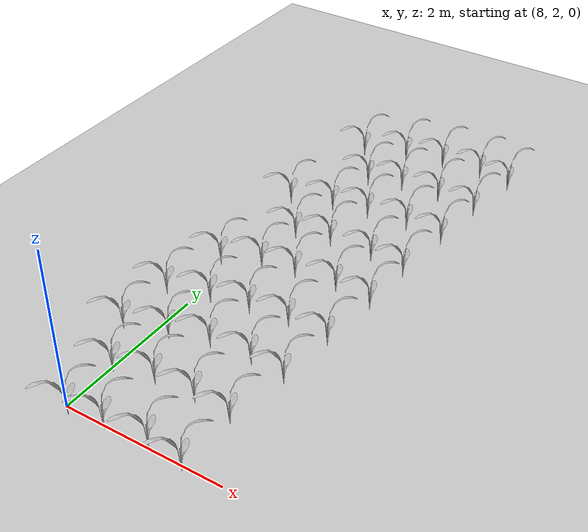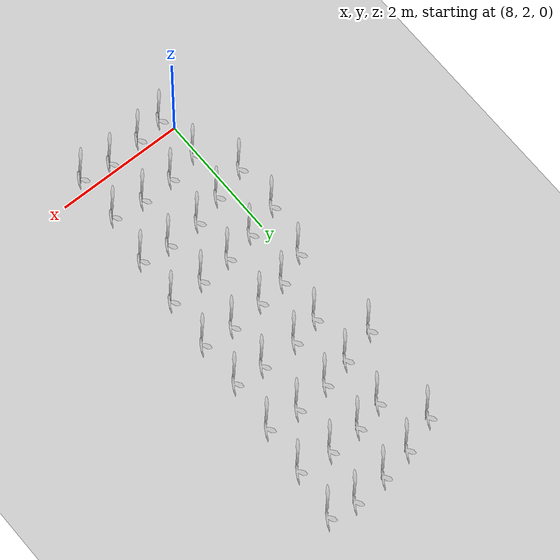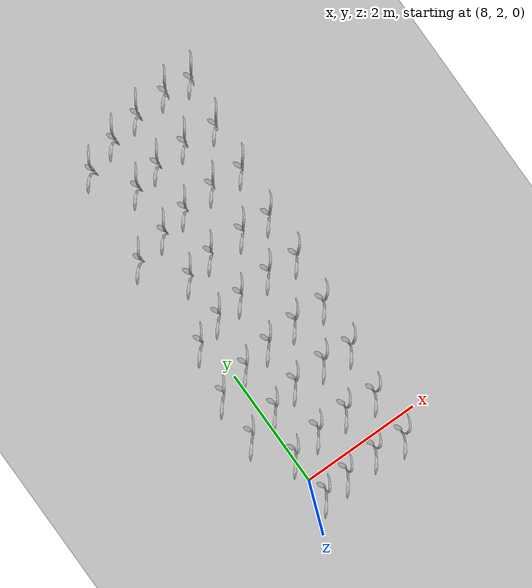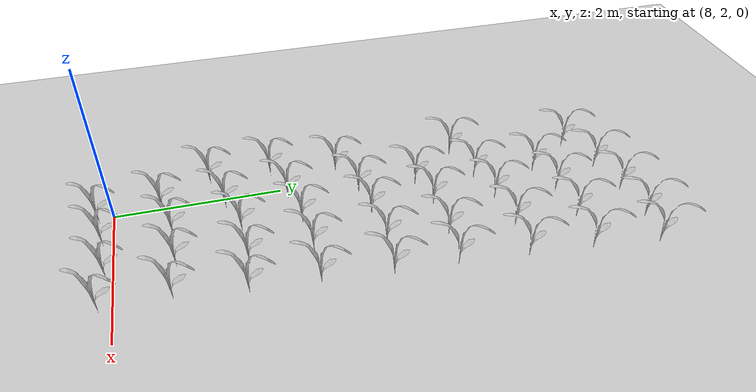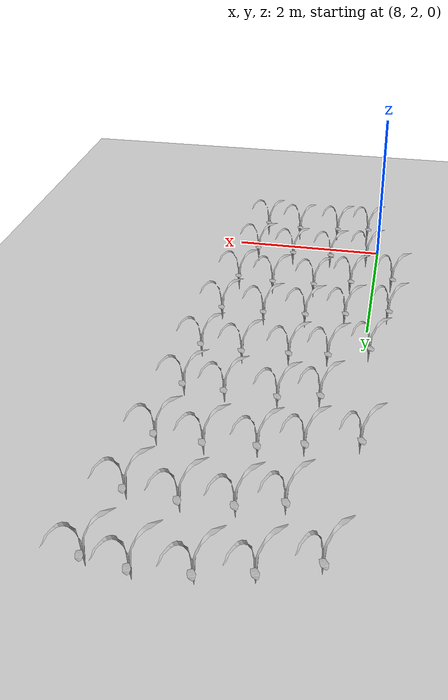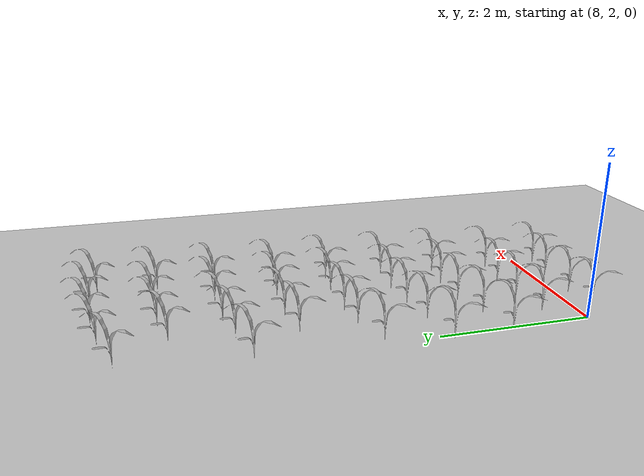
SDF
<sdf version="1.7">
 <world name="default">
  <model name="ground_plane">
   <static>1</static>
   <link name="link">
    <collision name="collision">
     <geometry><plane><normal>0 0 1</normal><size>100 100</size></plane></geometry>
     <surface>
      <contact><collide_bitmask>65535</collide_bitmask></contact>
      <friction><ode><mu>100</mu><mu2>50</mu2></ode></friction>
     </surface>
    </collision>
    <visual name="visual">
     <cast_shadows>0</cast_shadows>
     <geometry><plane><normal>0 0 1</normal><size>100 100</size></plane></geometry>
     <material>
      <script><uri>file://media/materials/scripts/gazebo.material</uri><name>Gazebo/Grey</name></script>
     </material>
    </visual>
   </link>
  </model>
  <model name="field_row_full_double">
   <model name="maize_02_clone_144">
    <pose>3.11491 -0.382862 0.000249 0 -0 0</pose>
    <link name="maize_02_link">
     <inertial>
      <pose>0 0 0.01 0 -0 0</pose>
      <mass>0.3</mass>
      <inertia>
       <ixx>0.00334167</ixx>
       <ixy>0</ixy>
       <ixz>0</ixz>
       <iyy>0.00334167</iyy>
       <iyz>0</iyz>
       <izz>1.66667e-05</izz>
      </inertia>
      <pose>0 0 0.1 0 -0 0</pose>
     </inertial>
     <collision name="collision">
      <pose>0 0 0.2 0 -0 0</pose>
      <geometry><box><size>0.02 0.02 0.4</size></box></geometry>
      <surface><friction><ode><mu>10</mu><mu2>10</mu2></ode></friction></surface>
     </collision>
     <visual name="visual">
      <geometry>
       <mesh><uri>model://maize_02/meshes/maize_02.dae</uri><scale>0.683166 0.683166 0.683166</scale></mesh>
      </geometry>
     </visual>
    </link>
   </model>
   <model name="maize_02_clone_145">
    <pose>3.5904 -0.244536 0.000249 0 -0 0</pose>
    <link name="maize_02_link">
     <inertial>
      <pose>0 0 0.01 0 -0 0</pose>
      <mass>0.3</mass>
      <inertia>
       <ixx>0.00334167</ixx>
       <ixy>0</ixy>
       <ixz>0</ixz>
       <iyy>0.00334167</iyy>
       <iyz>0</iyz>
       <izz>1.66667e-05</izz>
      </inertia>
      <pose>0 0 0.1 0 -0 0</pose>
     </inertial>
     <collision name="collision">
      <pose>0 0 0.2 0 -0 0</pose>
      <geometry><box><size>0.02 0.02 0.4</size></box></geometry>
      <surface><friction><ode><mu>10</mu><mu2>10</mu2></ode></friction></surface>
     </collision>
     <visual name="visual">
      <geometry>
       <mesh><uri>model://maize_02/meshes/maize_02.dae</uri><scale>0.683166 0.683166 0.683166</scale></mesh>
      </geometry>
     </visual>
    </link>
   </model>
   <model name="maize_02_clone_146">
    <pose>4.10048 -0.192664 0.000249 0 -0 0</pose>
    <link name="maize_02_link">
     <inertial>
      <pose>0 0 0.01 0 -0 0</pose>
      <mass>0.3</mass>
      <inertia>
       <ixx>0.00334167</ixx>
       <ixy>0</ixy>
       <ixz>0</ixz>
       <iyy>0.00334167</iyy>
       <iyz>0</iyz>
       <izz>1.66667e-05</izz>
      </inertia>
      <pose>0 0 0.1 0 -0 0</pose>
     </inertial>
     <collision name="collision">
      <pose>0 0 0.2 0 -0 0</pose>
      <geometry><box><size>0.02 0.02 0.4</size></box></geometry>
      <surface><friction><ode><mu>10</mu><mu2>10</mu2></ode></friction></surface>
     </collision>
     <visual name="visual">
      <geometry>
       <mesh><uri>model://maize_02/meshes/maize_02.dae</uri><scale>0.683166 0.683166 0.683166</scale></mesh>
      </geometry>
     </visual>
    </link>
   </model>
   <model name="maize_02_clone_147">
    <pose>4.59326 -0.209955 0.000249 0 -0 0</pose>
    <link name="maize_02_link">
     <inertial>
      <pose>0 0 0.01 0 -0 0</pose>
      <mass>0.3</mass>
      <inertia>
       <ixx>0.00334167</ixx>
       <ixy>0</ixy>
       <ixz>0</ixz>
       <iyy>0.00334167</iyy>
       <iyz>0</iyz>
       <izz>1.66667e-05</izz>
      </inertia>
      <pose>0 0 0.1 0 -0 0</pose>
     </inertial>
     <collision name="collision">
      <pose>0 0 0.2 0 -0 0</pose>
      <geometry><box><size>0.02 0.02 0.4</size></box></geometry>
      <surface><friction><ode><mu>10</mu><mu2>10</mu2></ode></friction></surface>
     </collision>
     <visual name="visual">
      <geometry>
       <mesh><uri>model://maize_02/meshes/maize_02.dae</uri><scale>0.683166 0.683166 0.683166</scale></mesh>
      </geometry>
     </visual>
    </link>
   </model>
   <model name="maize_02_clone_148">
    <pose>4.64514 0.576773 0.000249 0 -0 0</pose>
    <link name="maize_02_link">
     <inertial>
      <pose>0 0 0.01 0 -0 0</pose>
      <mass>0.3</mass>
      <inertia>
       <ixx>0.00334167</ixx>
       <ixy>0</ixy>
       <ixz>0</ixz>
       <iyy>0.00334167</iyy>
       <iyz>0</iyz>
       <izz>1.66667e-05</izz>
      </inertia>
      <pose>0 0 0.1 0 -0 0</pose>
     </inertial>
     <collision name="collision">
      <pose>0 0 0.2 0 -0 0</pose>
      <geometry><box><size>0.02 0.02 0.4</size></box></geometry>
      <surface><friction><ode><mu>10</mu><mu2>10</mu2></ode></friction></surface>
     </collision>
     <visual name="visual">
      <geometry>
       <mesh><uri>model://maize_02/meshes/maize_02.dae</uri><scale>0.683166 0.683166 0.683166</scale></mesh>
      </geometry>
     </visual>
    </link>
   </model>
   <model name="maize_02_clone_149">
    <pose>4.18693 0.594063 0.000249 0 -0 0</pose>
    <link name="maize_02_link">
     <inertial>
      <pose>0 0 0.01 0 -0 0</pose>
      <mass>0.3</mass>
      <inertia>
       <ixx>0.00334167</ixx>
       <ixy>0</ixy>
       <ixz>0</ixz>
       <iyy>0.00334167</iyy>
       <iyz>0</iyz>
       <izz>1.66667e-05</izz>
      </inertia>
      <pose>0 0 0.1 0 -0 0</pose>
     </inertial>
     <collision name="collision">
      <pose>0 0 0.2 0 -0 0</pose>
      <geometry><box><size>0.02 0.02 0.4</size></box></geometry>
      <surface><friction><ode><mu>10</mu><mu2>10</mu2></ode></friction></surface>
     </collision>
     <visual name="visual">
      <geometry>
       <mesh><uri>model://maize_02/meshes/maize_02.dae</uri><scale>0.683166 0.683166 0.683166</scale></mesh>
      </geometry>
     </visual>
    </link>
   </model>
   <model name="maize_02_clone_150">
    <pose>3.65957 0.533546 0.000249 0 -0 0</pose>
    <link name="maize_02_link">
     <inertial>
      <pose>0 0 0.01 0 -0 0</pose>
      <mass>0.3</mass>
      <inertia>
       <ixx>0.00334167</ixx>
       <ixy>0</ixy>
       <ixz>0</ixz>
       <iyy>0.00334167</iyy>
       <iyz>0</iyz>
       <izz>1.66667e-05</izz>
      </inertia>
      <pose>0 0 0.1 0 -0 0</pose>
     </inertial>
     <collision name="collision">
      <pose>0 0 0.2 0 -0 0</pose>
      <geometry><box><size>0.02 0.02 0.4</size></box></geometry>
      <surface><friction><ode><mu>10</mu><mu2>10</mu2></ode></friction></surface>
     </collision>
     <visual name="visual">
      <geometry>
       <mesh><uri>model://maize_02/meshes/maize_02.dae</uri><scale>0.683166 0.683166 0.683166</scale></mesh>
      </geometry>
     </visual>
    </link>
   </model>
   <model name="maize_02_clone_151">
    <pose>3.21001 0.360639 0.000249 0 -0 0</pose>
    <link name="maize_02_link">
     <inertial>
      <pose>0 0 0.01 0 -0 0</pose>
      <mass>0.3</mass>
      <inertia>
       <ixx>0.00334167</ixx>
       <ixy>0</ixy>
       <ixz>0</ixz>
       <iyy>0.00334167</iyy>
       <iyz>0</iyz>
       <izz>1.66667e-05</izz>
      </inertia>
      <pose>0 0 0.1 0 -0 0</pose>
     </inertial>
     <collision name="collision">
      <pose>0 0 0.2 0 -0 0</pose>
      <geometry><box><size>0.02 0.02 0.4</size></box></geometry>
      <surface><friction><ode><mu>10</mu><mu2>10</mu2></ode></friction></surface>
     </collision>
     <visual name="visual">
      <geometry>
       <mesh><uri>model://maize_02/meshes/maize_02.dae</uri><scale>0.683166 0.683166 0.683166</scale></mesh>
      </geometry>
     </visual>
    </link>
   </model>
   <model name="maize_02_clone_152">
    <pose>2.69993 0.179087 0.000249 0 -0 0</pose>
    <link name="maize_02_link">
     <inertial>
      <pose>0 0 0.01 0 -0 0</pose>
      <mass>0.3</mass>
      <inertia>
       <ixx>0.00334167</ixx>
       <ixy>0</ixy>
       <ixz>0</ixz>
       <iyy>0.00334167</iyy>
       <iyz>0</iyz>
       <izz>1.66667e-05</izz>
      </inertia>
      <pose>0 0 0.1 0 -0 0</pose>
     </inertial>
     <collision name="collision">
      <pose>0 0 0.2 0 -0 0</pose>
      <geometry><box><size>0.02 0.02 0.4</size></box></geometry>
      <surface><friction><ode><mu>10</mu><mu2>10</mu2></ode></friction></surface>
     </collision>
     <visual name="visual">
      <geometry>
       <mesh><uri>model://maize_02/meshes/maize_02.dae</uri><scale>0.683166 0.683166 0.683166</scale></mesh>
      </geometry>
     </visual>
    </link>
   </model>
   <model name="maize_02_clone_157">
    <pose>2.64806 0.922587 0.000249 0 -0 0</pose>
    <link name="maize_02_link">
     <inertial>
      <pose>0 0 0.01 0 -0 0</pose>
      <mass>0.3</mass>
      <inertia>
       <ixx>0.00334167</ixx>
       <ixy>0</ixy>
       <ixz>0</ixz>
       <iyy>0.00334167</iyy>
       <iyz>0</iyz>
       <izz>1.66667e-05</izz>
      </inertia>
      <pose>0 0 0.1 0 -0 0</pose>
     </inertial>
     <collision name="collision">
      <pose>0 0 0.2 0 -0 0</pose>
      <geometry><box><size>0.02 0.02 0.4</size></box></geometry>
      <surface><friction><ode><mu>10</mu><mu2>10</mu2></ode></friction></surface>
     </collision>
     <visual name="visual">
      <geometry>
       <mesh><uri>model://maize_02/meshes/maize_02.dae</uri><scale>0.683166 0.683166 0.683166</scale></mesh>
      </geometry>
     </visual>
    </link>
   </model>
   <model name="maize_02_clone_158">
    <pose>3.14949 1.10414 0.000249 0 -0 0</pose>
    <link name="maize_02_link">
     <inertial>
      <pose>0 0 0.01 0 -0 0</pose>
      <mass>0.3</mass>
      <inertia>
       <ixx>0.00334167</ixx>
       <ixy>0</ixy>
       <ixz>0</ixz>
       <iyy>0.00334167</iyy>
       <iyz>0</iyz>
       <izz>1.66667e-05</izz>
      </inertia>
      <pose>0 0 0.1 0 -0 0</pose>
     </inertial>
     <collision name="collision">
      <pose>0 0 0.2 0 -0 0</pose>
      <geometry><box><size>0.02 0.02 0.4</size></box></geometry>
      <surface><friction><ode><mu>10</mu><mu2>10</mu2></ode></friction></surface>
     </collision>
     <visual name="visual">
      <geometry>
       <mesh><uri>model://maize_02/meshes/maize_02.dae</uri><scale>0.683166 0.683166 0.683166</scale></mesh>
      </geometry>
     </visual>
    </link>
   </model>
   <model name="maize_02_clone_159">
    <pose>3.61634 1.23382 0.000249 0 -0 0</pose>
    <link name="maize_02_link">
     <inertial>
      <pose>0 0 0.01 0 -0 0</pose>
      <mass>0.3</mass>
      <inertia>
       <ixx>0.00334167</ixx>
       <ixy>0</ixy>
       <ixz>0</ixz>
       <iyy>0.00334167</iyy>
       <iyz>0</iyz>
       <izz>1.66667e-05</izz>
      </inertia>
      <pose>0 0 0.1 0 -0 0</pose>
     </inertial>
     <collision name="collision">
      <pose>0 0 0.2 0 -0 0</pose>
      <geometry><box><size>0.02 0.02 0.4</size></box></geometry>
      <surface><friction><ode><mu>10</mu><mu2>10</mu2></ode></friction></surface>
     </collision>
     <visual name="visual">
      <geometry>
       <mesh><uri>model://maize_02/meshes/maize_02.dae</uri><scale>0.683166 0.683166 0.683166</scale></mesh>
      </geometry>
     </visual>
    </link>
   </model>
   <model name="maize_02_clone_160">
    <pose>4.11777 1.31163 0.000249 0 -0 0</pose>
    <link name="maize_02_link">
     <inertial>
      <pose>0 0 0.01 0 -0 0</pose>
      <mass>0.3</mass>
      <inertia>
       <ixx>0.00334167</ixx>
       <ixy>0</ixy>
       <ixz>0</ixz>
       <iyy>0.00334167</iyy>
       <iyz>0</iyz>
       <izz>1.66667e-05</izz>
      </inertia>
      <pose>0 0 0.1 0 -0 0</pose>
     </inertial>
     <collision name="collision">
      <pose>0 0 0.2 0 -0 0</pose>
      <geometry><box><size>0.02 0.02 0.4</size></box></geometry>
      <surface><friction><ode><mu>10</mu><mu2>10</mu2></ode></friction></surface>
     </collision>
     <visual name="visual">
      <geometry>
       <mesh><uri>model://maize_02/meshes/maize_02.dae</uri><scale>0.683166 0.683166 0.683166</scale></mesh>
      </geometry>
     </visual>
    </link>
   </model>
   <model name="maize_02_clone_161">
    <pose>4.63649 1.33756 0.000249 0 -0 0</pose>
    <link name="maize_02_link">
     <inertial>
      <pose>0 0 0.01 0 -0 0</pose>
      <mass>0.3</mass>
      <inertia>
       <ixx>0.00334167</ixx>
       <ixy>0</ixy>
       <ixz>0</ixz>
       <iyy>0.00334167</iyy>
       <iyz>0</iyz>
       <izz>1.66667e-05</izz>
      </inertia>
      <pose>0 0 0.1 0 -0 0</pose>
     </inertial>
     <collision name="collision">
      <pose>0 0 0.2 0 -0 0</pose>
      <geometry><box><size>0.02 0.02 0.4</size></box></geometry>
      <surface><friction><ode><mu>10</mu><mu2>10</mu2></ode></friction></surface>
     </collision>
     <visual name="visual">
      <geometry>
       <mesh><uri>model://maize_02/meshes/maize_02.dae</uri><scale>0.683166 0.683166 0.683166</scale></mesh>
      </geometry>
     </visual>
    </link>
   </model>
   <model name="maize_02_clone_162">
    <pose>4.63649 2.12429 0.000249 0 -0 0</pose>
    <link name="maize_02_link">
     <inertial>
      <pose>0 0 0.01 0 -0 0</pose>
      <mass>0.3</mass>
      <inertia>
       <ixx>0.00334167</ixx>
       <ixy>0</ixy>
       <ixz>0</ixz>
       <iyy>0.00334167</iyy>
       <iyz>0</iyz>
       <izz>1.66667e-05</izz>
      </inertia>
      <pose>0 0 0.1 0 -0 0</pose>
     </inertial>
     <collision name="collision">
      <pose>0 0 0.2 0 -0 0</pose>
      <geometry><box><size>0.02 0.02 0.4</size></box></geometry>
      <surface><friction><ode><mu>10</mu><mu2>10</mu2></ode></friction></surface>
     </collision>
     <visual name="visual">
      <geometry>
       <mesh><uri>model://maize_02/meshes/maize_02.dae</uri><scale>0.683166 0.683166 0.683166</scale></mesh>
      </geometry>
     </visual>
    </link>
   </model>
   <model name="maize_02_clone_163">
    <pose>4.15235 2.13294 0.000249 0 -0 0</pose>
    <link name="maize_02_link">
     <inertial>
      <pose>0 0 0.01 0 -0 0</pose>
      <mass>0.3</mass>
      <inertia>
       <ixx>0.00334167</ixx>
       <ixy>0</ixy>
       <ixz>0</ixz>
       <iyy>0.00334167</iyy>
       <iyz>0</iyz>
       <izz>1.66667e-05</izz>
      </inertia>
      <pose>0 0 0.1 0 -0 0</pose>
     </inertial>
     <collision name="collision">
      <pose>0 0 0.2 0 -0 0</pose>
      <geometry><box><size>0.02 0.02 0.4</size></box></geometry>
      <surface><friction><ode><mu>10</mu><mu2>10</mu2></ode></friction></surface>
     </collision>
     <visual name="visual">
      <geometry>
       <mesh><uri>model://maize_02/meshes/maize_02.dae</uri><scale>0.683166 0.683166 0.683166</scale></mesh>
      </geometry>
     </visual>
    </link>
   </model>
   <model name="maize_02_clone_164">
    <pose>3.62499 2.04648 0.000249 0 -0 0</pose>
    <link name="maize_02_link">
     <inertial>
      <pose>0 0 0.01 0 -0 0</pose>
      <mass>0.3</mass>
      <inertia>
       <ixx>0.00334167</ixx>
       <ixy>0</ixy>
       <ixz>0</ixz>
       <iyy>0.00334167</iyy>
       <iyz>0</iyz>
       <izz>1.66667e-05</izz>
      </inertia>
      <pose>0 0 0.1 0 -0 0</pose>
     </inertial>
     <collision name="collision">
      <pose>0 0 0.2 0 -0 0</pose>
      <geometry><box><size>0.02 0.02 0.4</size></box></geometry>
      <surface><friction><ode><mu>10</mu><mu2>10</mu2></ode></friction></surface>
     </collision>
     <visual name="visual">
      <geometry>
       <mesh><uri>model://maize_02/meshes/maize_02.dae</uri><scale>0.683166 0.683166 0.683166</scale></mesh>
      </geometry>
     </visual>
    </link>
   </model>
   <model name="maize_02_clone_165">
    <pose>3.19272 1.96003 0.000249 0 -0 0</pose>
    <link name="maize_02_link">
     <inertial>
      <pose>0 0 0.01 0 -0 0</pose>
      <mass>0.3</mass>
      <inertia>
       <ixx>0.00334167</ixx>
       <ixy>0</ixy>
       <ixz>0</ixz>
       <iyy>0.00334167</iyy>
       <iyz>0</iyz>
       <izz>1.66667e-05</izz>
      </inertia>
      <pose>0 0 0.1 0 -0 0</pose>
     </inertial>
     <collision name="collision">
      <pose>0 0 0.2 0 -0 0</pose>
      <geometry><box><size>0.02 0.02 0.4</size></box></geometry>
      <surface><friction><ode><mu>10</mu><mu2>10</mu2></ode></friction></surface>
     </collision>
     <visual name="visual">
      <geometry>
       <mesh><uri>model://maize_02/meshes/maize_02.dae</uri><scale>0.683166 0.683166 0.683166</scale></mesh>
      </geometry>
     </visual>
    </link>
   </model>
   <model name="maize_02_clone_166">
    <pose>2.7518 1.73525 0.000249 0 -0 0</pose>
    <link name="maize_02_link">
     <inertial>
      <pose>0 0 0.01 0 -0 0</pose>
      <mass>0.3</mass>
      <inertia>
       <ixx>0.00334167</ixx>
       <ixy>0</ixy>
       <ixz>0</ixz>
       <iyy>0.00334167</iyy>
       <iyz>0</iyz>
       <izz>1.66667e-05</izz>
      </inertia>
      <pose>0 0 0.1 0 -0 0</pose>
     </inertial>
     <collision name="collision">
      <pose>0 0 0.2 0 -0 0</pose>
      <geometry><box><size>0.02 0.02 0.4</size></box></geometry>
      <surface><friction><ode><mu>10</mu><mu2>10</mu2></ode></friction></surface>
     </collision>
     <visual name="visual">
      <geometry>
       <mesh><uri>model://maize_02/meshes/maize_02.dae</uri><scale>0.683166 0.683166 0.683166</scale></mesh>
      </geometry>
     </visual>
    </link>
   </model>
   <model name="maize_02_clone_172">
    <pose>3.1322 2.6776 0.000249 0 -0 0</pose>
    <link name="maize_02_link">
     <inertial>
      <pose>0 0 0.01 0 -0 0</pose>
      <mass>0.3</mass>
      <inertia>
       <ixx>0.00334167</ixx>
       <ixy>0</ixy>
       <ixz>0</ixz>
       <iyy>0.00334167</iyy>
       <iyz>0</iyz>
       <izz>1.66667e-05</izz>
      </inertia>
      <pose>0 0 0.1 0 -0 0</pose>
     </inertial>
     <collision name="collision">
      <pose>0 0 0.2 0 -0 0</pose>
      <geometry><box><size>0.02 0.02 0.4</size></box></geometry>
      <surface><friction><ode><mu>10</mu><mu2>10</mu2></ode></friction></surface>
     </collision>
     <visual name="visual">
      <geometry>
       <mesh><uri>model://maize_02/meshes/maize_02.dae</uri><scale>0.683166 0.683166 0.683166</scale></mesh>
      </geometry>
     </visual>
    </link>
   </model>
   <model name="maize_02_clone_173">
    <pose>3.56447 2.80728 0.000249 0 -0 0</pose>
    <link name="maize_02_link">
     <inertial>
      <pose>0 0 0.01 0 -0 0</pose>
      <mass>0.3</mass>
      <inertia>
       <ixx>0.00334167</ixx>
       <ixy>0</ixy>
       <ixz>0</ixz>
       <iyy>0.00334167</iyy>
       <iyz>0</iyz>
       <izz>1.66667e-05</izz>
      </inertia>
      <pose>0 0 0.1 0 -0 0</pose>
     </inertial>
     <collision name="collision">
      <pose>0 0 0.2 0 -0 0</pose>
      <geometry><box><size>0.02 0.02 0.4</size></box></geometry>
      <surface><friction><ode><mu>10</mu><mu2>10</mu2></ode></friction></surface>
     </collision>
     <visual name="visual">
      <geometry>
       <mesh><uri>model://maize_02/meshes/maize_02.dae</uri><scale>0.683166 0.683166 0.683166</scale></mesh>
      </geometry>
     </visual>
    </link>
   </model>
   <model name="maize_02_clone_174">
    <pose>4.13506 2.8505 0.000249 0 -0 0</pose>
    <link name="maize_02_link">
     <inertial>
      <pose>0 0 0.01 0 -0 0</pose>
      <mass>0.3</mass>
      <inertia>
       <ixx>0.00334167</ixx>
       <ixy>0</ixy>
       <ixz>0</ixz>
       <iyy>0.00334167</iyy>
       <iyz>0</iyz>
       <izz>1.66667e-05</izz>
      </inertia>
      <pose>0 0 0.1 0 -0 0</pose>
     </inertial>
     <collision name="collision">
      <pose>0 0 0.2 0 -0 0</pose>
      <geometry><box><size>0.02 0.02 0.4</size></box></geometry>
      <surface><friction><ode><mu>10</mu><mu2>10</mu2></ode></friction></surface>
     </collision>
     <visual name="visual">
      <geometry>
       <mesh><uri>model://maize_02/meshes/maize_02.dae</uri><scale>0.683166 0.683166 0.683166</scale></mesh>
      </geometry>
     </visual>
    </link>
   </model>
   <model name="maize_02_clone_175">
    <pose>4.59327 2.8505 0.000249 0 -0 0</pose>
    <link name="maize_02_link">
     <inertial>
      <pose>0 0 0.01 0 -0 0</pose>
      <mass>0.3</mass>
      <inertia>
       <ixx>0.00334167</ixx>
       <ixy>0</ixy>
       <ixz>0</ixz>
       <iyy>0.00334167</iyy>
       <iyz>0</iyz>
       <izz>1.66667e-05</izz>
      </inertia>
      <pose>0 0 0.1 0 -0 0</pose>
     </inertial>
     <collision name="collision">
      <pose>0 0 0.2 0 -0 0</pose>
      <geometry><box><size>0.02 0.02 0.4</size></box></geometry>
      <surface><friction><ode><mu>10</mu><mu2>10</mu2></ode></friction></surface>
     </collision>
     <visual name="visual">
      <geometry>
       <mesh><uri>model://maize_02/meshes/maize_02.dae</uri><scale>0.683166 0.683166 0.683166</scale></mesh>
      </geometry>
     </visual>
    </link>
   </model>
   <model name="maize_02_clone_176">
    <pose>4.60191 3.65452 0.000249 0 -0 0</pose>
    <link name="maize_02_link">
     <inertial>
      <pose>0 0 0.01 0 -0 0</pose>
      <mass>0.3</mass>
      <inertia>
       <ixx>0.00334167</ixx>
       <ixy>0</ixy>
       <ixz>0</ixz>
       <iyy>0.00334167</iyy>
       <iyz>0</iyz>
       <izz>1.66667e-05</izz>
      </inertia>
      <pose>0 0 0.1 0 -0 0</pose>
     </inertial>
     <collision name="collision">
      <pose>0 0 0.2 0 -0 0</pose>
      <geometry><box><size>0.02 0.02 0.4</size></box></geometry>
      <surface><friction><ode><mu>10</mu><mu2>10</mu2></ode></friction></surface>
     </collision>
     <visual name="visual">
      <geometry>
       <mesh><uri>model://maize_02/meshes/maize_02.dae</uri><scale>0.683166 0.683166 0.683166</scale></mesh>
      </geometry>
     </visual>
    </link>
   </model>
   <model name="maize_02_clone_177">
    <pose>4.10048 3.65452 0.000249 0 -0 0</pose>
    <link name="maize_02_link">
     <inertial>
      <pose>0 0 0.01 0 -0 0</pose>
      <mass>0.3</mass>
      <inertia>
       <ixx>0.00334167</ixx>
       <ixy>0</ixy>
       <ixz>0</ixz>
       <iyy>0.00334167</iyy>
       <iyz>0</iyz>
       <izz>1.66667e-05</izz>
      </inertia>
      <pose>0 0 0.1 0 -0 0</pose>
     </inertial>
     <collision name="collision">
      <pose>0 0 0.2 0 -0 0</pose>
      <geometry><box><size>0.02 0.02 0.4</size></box></geometry>
      <surface><friction><ode><mu>10</mu><mu2>10</mu2></ode></friction></surface>
     </collision>
     <visual name="visual">
      <geometry>
       <mesh><uri>model://maize_02/meshes/maize_02.dae</uri><scale>0.683166 0.683166 0.683166</scale></mesh>
      </geometry>
     </visual>
    </link>
   </model>
   <model name="maize_02_clone_178">
    <pose>3.57311 3.56807 0.000249 0 -0 0</pose>
    <link name="maize_02_link">
     <inertial>
      <pose>0 0 0.01 0 -0 0</pose>
      <mass>0.3</mass>
      <inertia>
       <ixx>0.00334167</ixx>
       <ixy>0</ixy>
       <ixz>0</ixz>
       <iyy>0.00334167</iyy>
       <iyz>0</iyz>
       <izz>1.66667e-05</izz>
      </inertia>
      <pose>0 0 0.1 0 -0 0</pose>
     </inertial>
     <collision name="collision">
      <pose>0 0 0.2 0 -0 0</pose>
      <geometry><box><size>0.02 0.02 0.4</size></box></geometry>
      <surface><friction><ode><mu>10</mu><mu2>10</mu2></ode></friction></surface>
     </collision>
     <visual name="visual">
      <geometry>
       <mesh><uri>model://maize_02/meshes/maize_02.dae</uri><scale>0.683166 0.683166 0.683166</scale></mesh>
      </geometry>
     </visual>
    </link>
   </model>
   <model name="maize_02_clone_179">
    <pose>3.1322 3.42974 0.000249 0 -0 0</pose>
    <link name="maize_02_link">
     <inertial>
      <pose>0 0 0.01 0 -0 0</pose>
      <mass>0.3</mass>
      <inertia>
       <ixx>0.00334167</ixx>
       <ixy>0</ixy>
       <ixz>0</ixz>
       <iyy>0.00334167</iyy>
       <iyz>0</iyz>
       <izz>1.66667e-05</izz>
      </inertia>
      <pose>0 0 0.1 0 -0 0</pose>
     </inertial>
     <collision name="collision">
      <pose>0 0 0.2 0 -0 0</pose>
      <geometry><box><size>0.02 0.02 0.4</size></box></geometry>
      <surface><friction><ode><mu>10</mu><mu2>10</mu2></ode></friction></surface>
     </collision>
     <visual name="visual">
      <geometry>
       <mesh><uri>model://maize_02/meshes/maize_02.dae</uri><scale>0.683166 0.683166 0.683166</scale></mesh>
      </geometry>
     </visual>
    </link>
   </model>
   <model name="maize_02_clone_180">
    <pose>2.60483 3.24819 0.000249 0 -0 0</pose>
    <link name="maize_02_link">
     <inertial>
      <pose>0 0 0.01 0 -0 0</pose>
      <mass>0.3</mass>
      <inertia>
       <ixx>0.00334167</ixx>
       <ixy>0</ixy>
       <ixz>0</ixz>
       <iyy>0.00334167</iyy>
       <iyz>0</iyz>
       <izz>1.66667e-05</izz>
      </inertia>
      <pose>0 0 0.1 0 -0 0</pose>
     </inertial>
     <collision name="collision">
      <pose>0 0 0.2 0 -0 0</pose>
      <geometry><box><size>0.02 0.02 0.4</size></box></geometry>
      <surface><friction><ode><mu>10</mu><mu2>10</mu2></ode></friction></surface>
     </collision>
     <visual name="visual">
      <geometry>
       <mesh><uri>model://maize_02/meshes/maize_02.dae</uri><scale>0.683166 0.683166 0.683166</scale></mesh>
      </geometry>
     </visual>
    </link>
   </model>
   <model name="maize_02_clone_186">
    <pose>3.1322 4.19918 0.000249 0 -0 0</pose>
    <link name="maize_02_link">
     <inertial>
      <pose>0 0 0.01 0 -0 0</pose>
      <mass>0.3</mass>
      <inertia>
       <ixx>0.00334167</ixx>
       <ixy>0</ixy>
       <ixz>0</ixz>
       <iyy>0.00334167</iyy>
       <iyz>0</iyz>
       <izz>1.66667e-05</izz>
      </inertia>
      <pose>0 0 0.1 0 -0 0</pose>
     </inertial>
     <collision name="collision">
      <pose>0 0 0.2 0 -0 0</pose>
      <geometry><box><size>0.02 0.02 0.4</size></box></geometry>
      <surface><friction><ode><mu>10</mu><mu2>10</mu2></ode></friction></surface>
     </collision>
     <visual name="visual">
      <geometry>
       <mesh><uri>model://maize_02/meshes/maize_02.dae</uri><scale>0.683166 0.683166 0.683166</scale></mesh>
      </geometry>
     </visual>
    </link>
   </model>
   <model name="maize_02_clone_187">
    <pose>3.56447 4.34615 0.000249 0 -0 0</pose>
    <link name="maize_02_link">
     <inertial>
      <pose>0 0 0.01 0 -0 0</pose>
      <mass>0.3</mass>
      <inertia>
       <ixx>0.00334167</ixx>
       <ixy>0</ixy>
       <ixz>0</ixz>
       <iyy>0.00334167</iyy>
       <iyz>0</iyz>
       <izz>1.66667e-05</izz>
      </inertia>
      <pose>0 0 0.1 0 -0 0</pose>
     </inertial>
     <collision name="collision">
      <pose>0 0 0.2 0 -0 0</pose>
      <geometry><box><size>0.02 0.02 0.4</size></box></geometry>
      <surface><friction><ode><mu>10</mu><mu2>10</mu2></ode></friction></surface>
     </collision>
     <visual name="visual">
      <geometry>
       <mesh><uri>model://maize_02/meshes/maize_02.dae</uri><scale>0.683166 0.683166 0.683166</scale></mesh>
      </geometry>
     </visual>
    </link>
   </model>
   <model name="maize_02_clone_188">
    <pose>4.07454 4.41531 0.000249 0 -0 0</pose>
    <link name="maize_02_link">
     <inertial>
      <pose>0 0 0.01 0 -0 0</pose>
      <mass>0.3</mass>
      <inertia>
       <ixx>0.00334167</ixx>
       <ixy>0</ixy>
       <ixz>0</ixz>
       <iyy>0.00334167</iyy>
       <iyz>0</iyz>
       <izz>1.66667e-05</izz>
      </inertia>
      <pose>0 0 0.1 0 -0 0</pose>
     </inertial>
     <collision name="collision">
      <pose>0 0 0.2 0 -0 0</pose>
      <geometry><box><size>0.02 0.02 0.4</size></box></geometry>
      <surface><friction><ode><mu>10</mu><mu2>10</mu2></ode></friction></surface>
     </collision>
     <visual name="visual">
      <geometry>
       <mesh><uri>model://maize_02/meshes/maize_02.dae</uri><scale>0.683166 0.683166 0.683166</scale></mesh>
      </geometry>
     </visual>
    </link>
   </model>
   <model name="maize_02_clone_189">
    <pose>4.60191 4.40667 0.000249 0 -0 0</pose>
    <link name="maize_02_link">
     <inertial>
      <pose>0 0 0.01 0 -0 0</pose>
      <mass>0.3</mass>
      <inertia>
       <ixx>0.00334167</ixx>
       <ixy>0</ixy>
       <ixz>0</ixz>
       <iyy>0.00334167</iyy>
       <iyz>0</iyz>
       <izz>1.66667e-05</izz>
      </inertia>
      <pose>0 0 0.1 0 -0 0</pose>
     </inertial>
     <collision name="collision">
      <pose>0 0 0.2 0 -0 0</pose>
      <geometry><box><size>0.02 0.02 0.4</size></box></geometry>
      <surface><friction><ode><mu>10</mu><mu2>10</mu2></ode></friction></surface>
     </collision>
     <visual name="visual">
      <geometry>
       <mesh><uri>model://maize_02/meshes/maize_02.dae</uri><scale>0.683166 0.683166 0.683166</scale></mesh>
      </geometry>
     </visual>
    </link>
   </model>
   <model name="maize_02_clone_190">
    <pose>4.64514 5.18475 0.000249 0 -0 0</pose>
    <link name="maize_02_link">
     <inertial>
      <pose>0 0 0.01 0 -0 0</pose>
      <mass>0.3</mass>
      <inertia>
       <ixx>0.00334167</ixx>
       <ixy>0</ixy>
       <ixz>0</ixz>
       <iyy>0.00334167</iyy>
       <iyz>0</iyz>
       <izz>1.66667e-05</izz>
      </inertia>
      <pose>0 0 0.1 0 -0 0</pose>
     </inertial>
     <collision name="collision">
      <pose>0 0 0.2 0 -0 0</pose>
      <geometry><box><size>0.02 0.02 0.4</size></box></geometry>
      <surface><friction><ode><mu>10</mu><mu2>10</mu2></ode></friction></surface>
     </collision>
     <visual name="visual">
      <geometry>
       <mesh><uri>model://maize_02/meshes/maize_02.dae</uri><scale>0.683166 0.683166 0.683166</scale></mesh>
      </geometry>
     </visual>
    </link>
   </model>
   <model name="maize_02_clone_191">
    <pose>4.21287 5.21069 0.000249 0 -0 0</pose>
    <link name="maize_02_link">
     <inertial>
      <pose>0 0 0.01 0 -0 0</pose>
      <mass>0.3</mass>
      <inertia>
       <ixx>0.00334167</ixx>
       <ixy>0</ixy>
       <ixz>0</ixz>
       <iyy>0.00334167</iyy>
       <iyz>0</iyz>
       <izz>1.66667e-05</izz>
      </inertia>
      <pose>0 0 0.1 0 -0 0</pose>
     </inertial>
     <collision name="collision">
      <pose>0 0 0.2 0 -0 0</pose>
      <geometry><box><size>0.02 0.02 0.4</size></box></geometry>
      <surface><friction><ode><mu>10</mu><mu2>10</mu2></ode></friction></surface>
     </collision>
     <visual name="visual">
      <geometry>
       <mesh><uri>model://maize_02/meshes/maize_02.dae</uri><scale>0.683166 0.683166 0.683166</scale></mesh>
      </geometry>
     </visual>
    </link>
   </model>
   <model name="maize_02_clone_192">
    <pose>3.6855 5.13288 0.000249 0 -0 0</pose>
    <link name="maize_02_link">
     <inertial>
      <pose>0 0 0.01 0 -0 0</pose>
      <mass>0.3</mass>
      <inertia>
       <ixx>0.00334167</ixx>
       <ixy>0</ixy>
       <ixz>0</ixz>
       <iyy>0.00334167</iyy>
       <iyz>0</iyz>
       <izz>1.66667e-05</izz>
      </inertia>
      <pose>0 0 0.1 0 -0 0</pose>
     </inertial>
     <collision name="collision">
      <pose>0 0 0.2 0 -0 0</pose>
      <geometry><box><size>0.02 0.02 0.4</size></box></geometry>
      <surface><friction><ode><mu>10</mu><mu2>10</mu2></ode></friction></surface>
     </collision>
     <visual name="visual">
      <geometry>
       <mesh><uri>model://maize_02/meshes/maize_02.dae</uri><scale>0.683166 0.683166 0.683166</scale></mesh>
      </geometry>
     </visual>
    </link>
   </model>
   <model name="maize_02_clone_193">
    <pose>3.19272 4.99455 0.000249 0 -0 0</pose>
    <link name="maize_02_link">
     <inertial>
      <pose>0 0 0.01 0 -0 0</pose>
      <mass>0.3</mass>
      <inertia>
       <ixx>0.00334167</ixx>
       <ixy>0</ixy>
       <ixz>0</ixz>
       <iyy>0.00334167</iyy>
       <iyz>0</iyz>
       <izz>1.66667e-05</izz>
      </inertia>
      <pose>0 0 0.1 0 -0 0</pose>
     </inertial>
     <collision name="collision">
      <pose>0 0 0.2 0 -0 0</pose>
      <geometry><box><size>0.02 0.02 0.4</size></box></geometry>
      <surface><friction><ode><mu>10</mu><mu2>10</mu2></ode></friction></surface>
     </collision>
     <visual name="visual">
      <geometry>
       <mesh><uri>model://maize_02/meshes/maize_02.dae</uri><scale>0.683166 0.683166 0.683166</scale></mesh>
      </geometry>
     </visual>
    </link>
   </model>
   <model name="maize_02_clone_194">
    <pose>2.674 4.76113 0.000249 0 -0 0</pose>
    <link name="maize_02_link">
     <inertial>
      <pose>0 0 0.01 0 -0 0</pose>
      <mass>0.3</mass>
      <inertia>
       <ixx>0.00334167</ixx>
       <ixy>0</ixy>
       <ixz>0</ixz>
       <iyy>0.00334167</iyy>
       <iyz>0</iyz>
       <izz>1.66667e-05</izz>
      </inertia>
      <pose>0 0 0.1 0 -0 0</pose>
     </inertial>
     <collision name="collision">
      <pose>0 0 0.2 0 -0 0</pose>
      <geometry><box><size>0.02 0.02 0.4</size></box></geometry>
      <surface><friction><ode><mu>10</mu><mu2>10</mu2></ode></friction></surface>
     </collision>
     <visual name="visual">
      <geometry>
       <mesh><uri>model://maize_02/meshes/maize_02.dae</uri><scale>0.683166 0.683166 0.683166</scale></mesh>
      </geometry>
     </visual>
    </link>
   </model>
   <model name="maize_02_clone_65">
    <pose>4.6421 -0.960443 0.000249 0 -0 0</pose>
    <link name="maize_02_link">
     <inertial>
      <pose>0 0 0.01 0 -0 0</pose>
      <mass>0.3</mass>
      <inertia>
       <ixx>0.00334167</ixx>
       <ixy>0</ixy>
       <ixz>0</ixz>
       <iyy>0.00334167</iyy>
       <iyz>0</iyz>
       <izz>1.66667e-05</izz>
      </inertia>
      <pose>0 0 0.1 0 -0 0</pose>
     </inertial>
     <collision name="collision">
      <pose>0 0 0.2 0 -0 0</pose>
      <geometry><box><size>0.02 0.02 0.4</size></box></geometry>
      <surface><friction><ode><mu>10</mu><mu2>10</mu2></ode></friction></surface>
     </collision>
     <visual name="visual">
      <geometry>
       <mesh><uri>model://maize_02/meshes/maize_02.dae</uri><scale>0.683166 0.683166 0.683166</scale></mesh>
      </geometry>
     </visual>
    </link>
   </model>
   <model name="maize_02_clone_66">
    <pose>4.16842 -0.930625 0.000249 0 -0 0</pose>
    <link name="maize_02_link">
     <inertial>
      <pose>0 0 0.01 0 -0 0</pose>
      <mass>0.3</mass>
      <inertia>
       <ixx>0.00334167</ixx>
       <ixy>0</ixy>
       <ixz>0</ixz>
       <iyy>0.00334167</iyy>
       <iyz>0</iyz>
       <izz>1.66667e-05</izz>
      </inertia>
      <pose>0 0 0.1 0 -0 0</pose>
     </inertial>
     <collision name="collision">
      <pose>0 0 0.2 0 -0 0</pose>
      <geometry><box><size>0.02 0.02 0.4</size></box></geometry>
      <surface><friction><ode><mu>10</mu><mu2>10</mu2></ode></friction></surface>
     </collision>
     <visual name="visual">
      <geometry>
       <mesh><uri>model://maize_02/meshes/maize_02.dae</uri><scale>0.683166 0.683166 0.683166</scale></mesh>
      </geometry>
     </visual>
    </link>
   </model>
   <model name="maize_02_clone_67">
    <pose>3.63596 -1.01473 0.000249 0 -0 0</pose>
    <link name="maize_02_link">
     <inertial>
      <pose>0 0 0.01 0 -0 0</pose>
      <mass>0.3</mass>
      <inertia>
       <ixx>0.00334167</ixx>
       <ixy>0</ixy>
       <ixz>0</ixz>
       <iyy>0.00334167</iyy>
       <iyz>0</iyz>
       <izz>1.66667e-05</izz>
      </inertia>
      <pose>0 0 0.1 0 -0 0</pose>
     </inertial>
     <collision name="collision">
      <pose>0 0 0.2 0 -0 0</pose>
      <geometry><box><size>0.02 0.02 0.4</size></box></geometry>
      <surface><friction><ode><mu>10</mu><mu2>10</mu2></ode></friction></surface>
     </collision>
     <visual name="visual">
      <geometry>
       <mesh><uri>model://maize_02/meshes/maize_02.dae</uri><scale>0.683166 0.683166 0.683166</scale></mesh>
      </geometry>
     </visual>
    </link>
   </model>
   <model name="maize_02_clone_68">
    <pose>3.21083 -1.10355 0.000249 0 -0 0</pose>
    <link name="maize_02_link">
     <inertial>
      <pose>0 0 0.01 0 -0 0</pose>
      <mass>0.3</mass>
      <inertia>
       <ixx>0.00334167</ixx>
       <ixy>0</ixy>
       <ixz>0</ixz>
       <iyy>0.00334167</iyy>
       <iyz>0</iyz>
       <izz>1.66667e-05</izz>
      </inertia>
      <pose>0 0 0.1 0 -0 0</pose>
     </inertial>
     <collision name="collision">
      <pose>0 0 0.2 0 -0 0</pose>
      <geometry><box><size>0.02 0.02 0.4</size></box></geometry>
      <surface><friction><ode><mu>10</mu><mu2>10</mu2></ode></friction></surface>
     </collision>
     <visual name="visual">
      <geometry>
       <mesh><uri>model://maize_02/meshes/maize_02.dae</uri><scale>0.683166 0.683166 0.683166</scale></mesh>
      </geometry>
     </visual>
    </link>
   </model>
   <static>0</static>
   <pose>5.06014 3.21474 0.082285 6e-06 -5e-05 -0.080663</pose>
  </model>
 </world>
</sdf>
